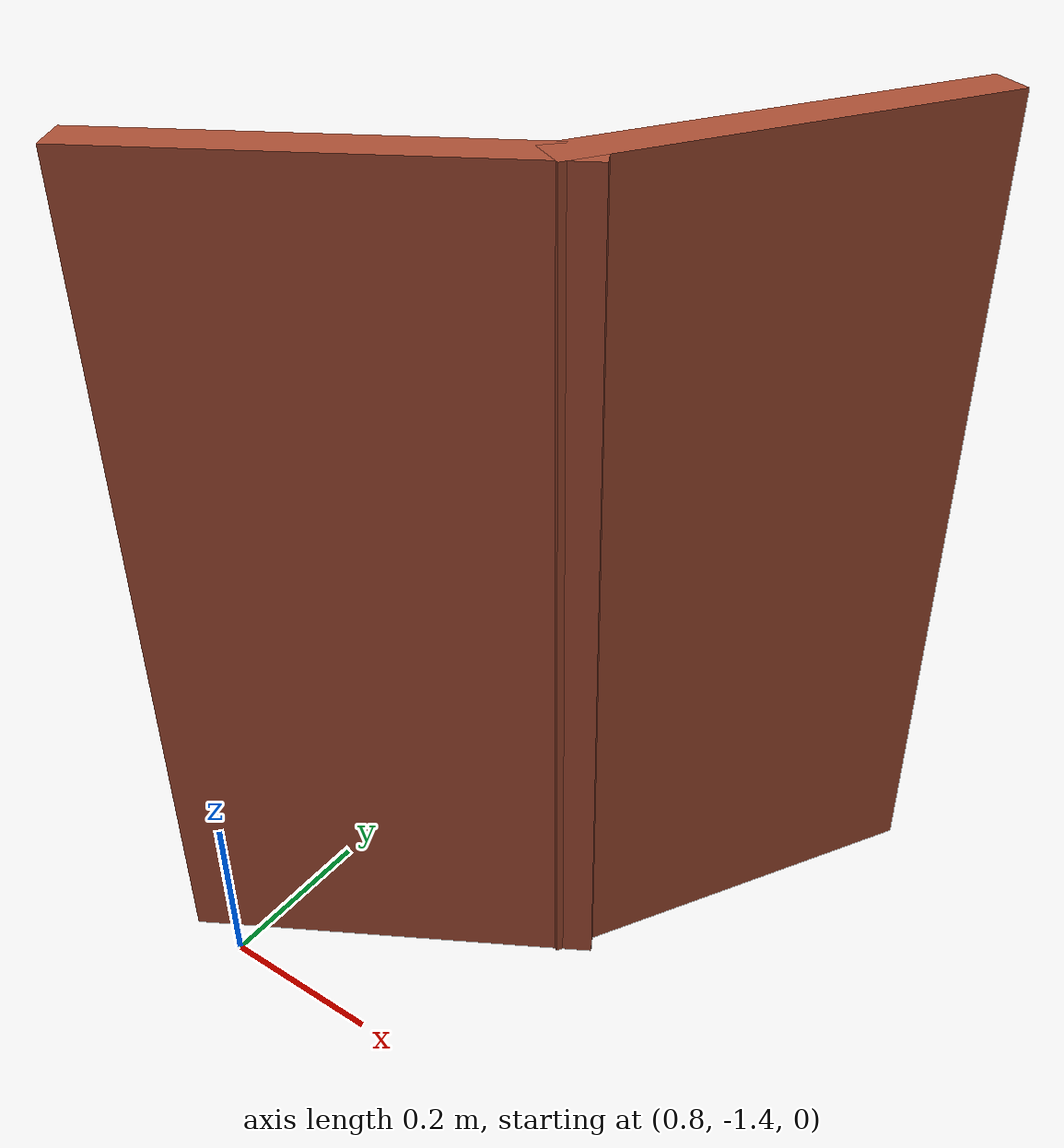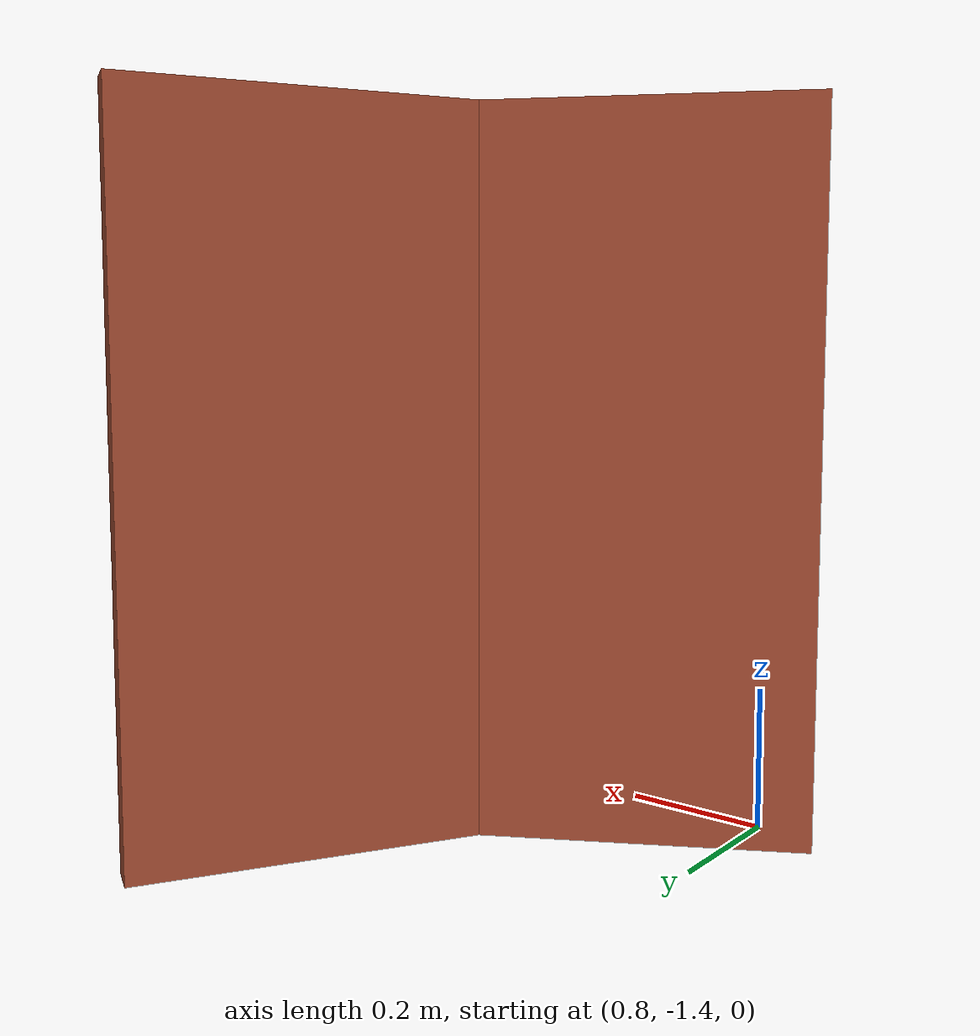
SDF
<?xml version='1.0'?>
<sdf version='1.7'>
  <model name='curva'>
    <pose>0.687243 -0.700754 0 0 -0 0</pose>
    <link name='Wall_5'>
      <collision name='Wall_5_Collision'>
        <geometry>
          <box>
            <size>0.5 0.05 1</size>
          </box>
        </geometry>
        <pose>0 0 0.5 0 -0 0</pose>
      </collision>
      <visual name='Wall_5_Visual'>
        <pose>0 0 0.5 0 -0 0</pose>
        <geometry>
          <box>
            <size>0.5 0.05 1</size>
          </box>
        </geometry>
        <material>
          <script>
            <uri>file://media/materials/scripts/gazebo.material</uri>
            <name>Gazebo/Bricks</name>
          </script>
          <ambient>1 1 1 1</ambient>
        </material>
        <meta>
          <layer>0</layer>
        </meta>
      </visual>
      <pose>0.540592 -0.246748 0 0 -0 1.0472</pose>
    </link>
    <link name='Wall_8'>
      <collision name='Wall_8_Collision'>
        <geometry>
          <box>
            <size>0.5 0.05 1</size>
          </box>
        </geometry>
        <pose>0 0 0.5 0 -0 0</pose>
      </collision>
      <visual name='Wall_8_Visual'>
        <pose>0 0 0.5 0 -0 0</pose>
        <geometry>
          <box>
            <size>0.5 0.05 1</size>
          </box>
        </geometry>
        <material>
          <script>
            <uri>file://media/materials/scripts/gazebo.material</uri>
            <name>Gazebo/Bricks</name>
          </script>
          <ambient>1 1 1 1</ambient>
        </material>
        <meta>
          <layer>0</layer>
        </meta>
      </visual>
      <pose>0.243236 -0.554103 0 0 -0 0.523599</pose>
    </link>
    <static>1</static>
  </model>
</sdf>
